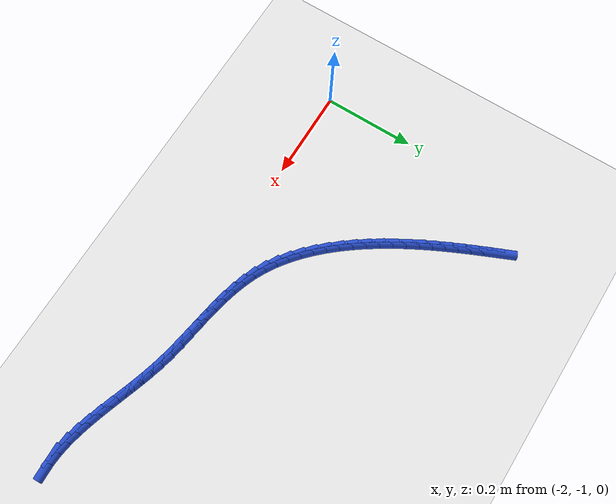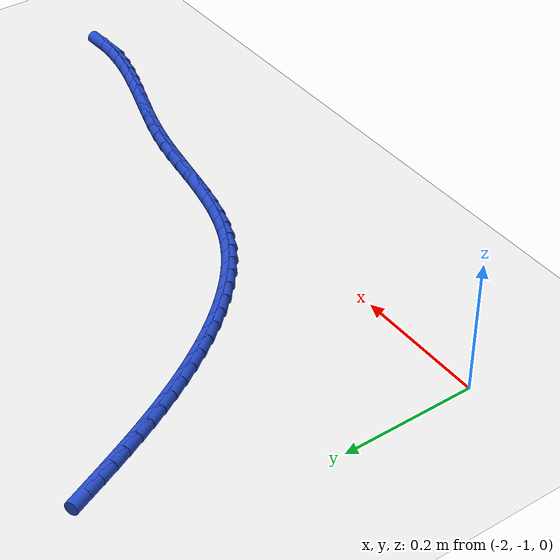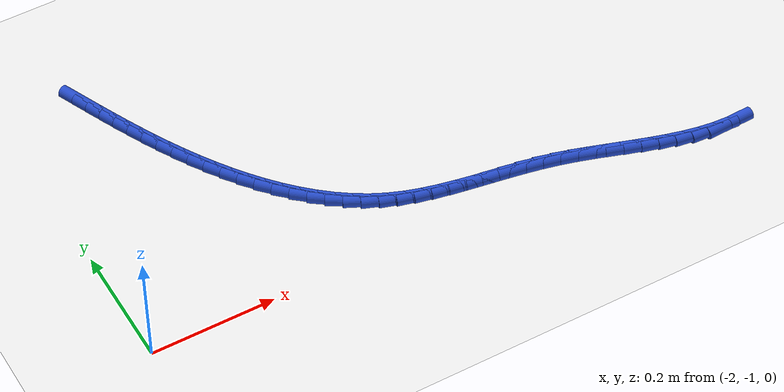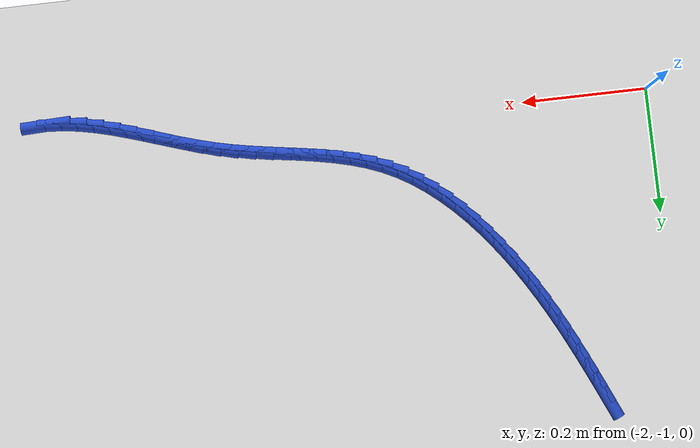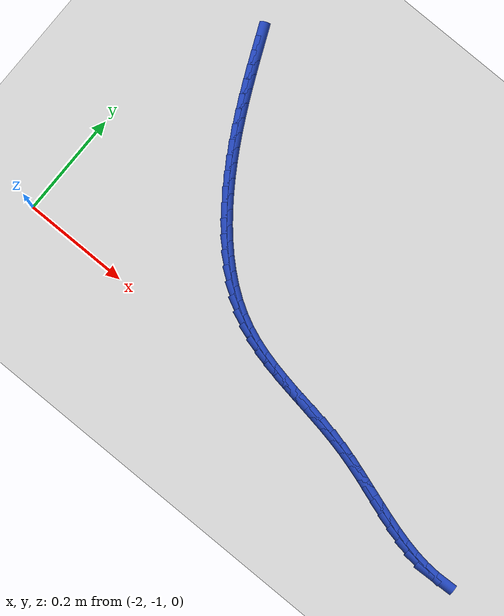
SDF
<sdf version="1.6">
 <world name="default">
  <model name="ground_plane">
   <static>1</static>
   <link name="link">
    <collision name="collision">
     <geometry><plane><normal>0 0 1</normal><size>100 100</size></plane></geometry>
     <surface><friction><ode><mu>100</mu><mu2>50</mu2></ode></friction></surface>
    </collision>
    <visual name="visual">
     <cast_shadows>0</cast_shadows>
     <geometry><plane><normal>0 0 1</normal><size>100 100</size></plane></geometry>
     <material>
      <script><uri>file://media/materials/scripts/gazebo.material</uri><name>Gazebo/WhiteGlow</name></script>
     </material>
    </visual>
   </link>
  </model>
  <model name="line">
   <link name="link_141">
    <pose>-1.8770264630937121 -0.5190698641041543 0.01 0 1.57 -1.151069824280215</pose>
    <collision name="collision">
     <geometry><cylinder><radius>0.01</radius><length>0.08</length></cylinder></geometry>
    </collision>
    <visual name="visual">
     <material>
      <script><name>Gazebo/Blue</name><uri>file://media/materials/scripts/gazebo.material</uri></script>
     </material>
     <geometry><cylinder><radius>0.01</radius><length>0.08</length></cylinder></geometry>
    </visual>
   </link>
   <link name="link_142">
    <pose>-1.8661264754642812 -0.543495905219309 0.01 0 1.57 -1.1443389175139003</pose>
    <collision name="collision">
     <geometry><cylinder><radius>0.01</radius><length>0.08</length></cylinder></geometry>
    </collision>
    <visual name="visual">
     <material>
      <script><name>Gazebo/Blue</name><uri>file://media/materials/scripts/gazebo.material</uri></script>
     </material>
     <geometry><cylinder><radius>0.01</radius><length>0.08</length></cylinder></geometry>
    </visual>
   </link>
   <link name="link_143">
    <pose>-1.8550273458565236 -0.567925019133953 0.01 0 1.57 -1.1341656578159842</pose>
    <collision name="collision">
     <geometry><cylinder><radius>0.01</radius><length>0.08</length></cylinder></geometry>
    </collision>
    <visual name="visual">
     <material>
      <script><name>Gazebo/Blue</name><uri>file://media/materials/scripts/gazebo.material</uri></script>
     </material>
     <geometry><cylinder><radius>0.01</radius><length>0.08</length></cylinder></geometry>
    </visual>
   </link>
   <link name="link_144">
    <pose>-1.8436387939530885 -0.592328835454801 0.01 0 1.57 -1.1205998817750848</pose>
    <collision name="collision">
     <geometry><cylinder><radius>0.01</radius><length>0.08</length></cylinder></geometry>
    </collision>
    <visual name="visual">
     <material>
      <script><name>Gazebo/Blue</name><uri>file://media/materials/scripts/gazebo.material</uri></script>
     </material>
     <geometry><cylinder><radius>0.01</radius><length>0.08</length></cylinder></geometry>
    </visual>
   </link>
   <link name="link_145">
    <pose>-1.8318705054424638 -0.6166788302595444 0.01 0 1.57 -1.1037092549878917</pose>
    <collision name="collision">
     <geometry><cylinder><radius>0.01</radius><length>0.08</length></cylinder></geometry>
    </collision>
    <visual name="visual">
     <material>
      <script><name>Gazebo/Blue</name><uri>file://media/materials/scripts/gazebo.material</uri></script>
     </material>
     <geometry><cylinder><radius>0.01</radius><length>0.08</length></cylinder></geometry>
    </visual>
   </link>
   <link name="link_146">
    <pose>-1.8196321660131374 -0.6409464796258747 0.01 0 1.57 -1.083579593771418</pose>
    <collision name="collision">
     <geometry><cylinder><radius>0.01</radius><length>0.08</length></cylinder></geometry>
    </collision>
    <visual name="visual">
     <material>
      <script><name>Gazebo/Blue</name><uri>file://media/materials/scripts/gazebo.material</uri></script>
     </material>
     <geometry><cylinder><radius>0.01</radius><length>0.08</length></cylinder></geometry>
    </visual>
   </link>
   <link name="link_147">
    <pose>-1.8068334613535972 -0.6651032596314839 0.01 0 1.57 -1.060319173628666</pose>
    <collision name="collision">
     <geometry><cylinder><radius>0.01</radius><length>0.08</length></cylinder></geometry>
    </collision>
    <visual name="visual">
     <material>
      <script><name>Gazebo/Blue</name><uri>file://media/materials/scripts/gazebo.material</uri></script>
     </material>
     <geometry><cylinder><radius>0.01</radius><length>0.08</length></cylinder></geometry>
    </visual>
   </link>
   <link name="link_148">
    <pose>-1.793384077152332 -0.6891206463540623 0.01 0 1.57 -1.0340631519101797</pose>
    <collision name="collision">
     <geometry><cylinder><radius>0.01</radius><length>0.08</length></cylinder></geometry>
    </collision>
    <visual name="visual">
     <material>
      <script><name>Gazebo/Blue</name><uri>file://media/materials/scripts/gazebo.material</uri></script>
     </material>
     <geometry><cylinder><radius>0.01</radius><length>0.08</length></cylinder></geometry>
    </visual>
   </link>
   <link name="link_149">
    <pose>-1.7791936990978297 -0.7129701158713018 0.01 0 1.57 -1.004926401782073</pose>
    <collision name="collision">
     <geometry><cylinder><radius>0.01</radius><length>0.08</length></cylinder></geometry>
    </collision>
    <visual name="visual">
     <material>
      <script><name>Gazebo/Blue</name><uri>file://media/materials/scripts/gazebo.material</uri></script>
     </material>
     <geometry><cylinder><radius>0.01</radius><length>0.08</length></cylinder></geometry>
    </visual>
   </link>
   <link name="link_150">
    <pose>-1.764182779621248 -0.7366035149778437 0.01 0 1.57 -0.9726370142380498</pose>
    <collision name="collision">
     <geometry><cylinder><radius>0.01</radius><length>0.08</length></cylinder></geometry>
    </collision>
    <visual name="visual">
     <material>
      <script><name>Gazebo/Blue</name><uri>file://media/materials/scripts/gazebo.material</uri></script>
     </material>
     <geometry><cylinder><radius>0.01</radius><length>0.08</length></cylinder></geometry>
    </visual>
   </link>
   <link name="link_151">
    <pose>-1.7483280337033917 -0.7598701159436102 0.01 0 1.57 -0.9367497758504644</pose>
    <collision name="collision">
     <geometry><cylinder><radius>0.01</radius><length>0.08</length></cylinder></geometry>
    </collision>
    <visual name="visual">
     <material>
      <script><name>Gazebo/Blue</name><uri>file://media/materials/scripts/gazebo.material</uri></script>
     </material>
     <geometry><cylinder><radius>0.01</radius><length>0.08</length></cylinder></geometry>
    </visual>
   </link>
   <link name="link_152">
    <pose>-1.731624493352692 -0.782585796526274 0.01 0 1.57 -0.896810469573696</pose>
    <collision name="collision">
     <geometry><cylinder><radius>0.01</radius><length>0.08</length></cylinder></geometry>
    </collision>
    <visual name="visual">
     <material>
      <script><name>Gazebo/Blue</name><uri>file://media/materials/scripts/gazebo.material</uri></script>
     </material>
     <geometry><cylinder><radius>0.01</radius><length>0.08</length></cylinder></geometry>
    </visual>
   </link>
   <link name="link_153">
    <pose>-1.7140672005016275 -0.8045664163905833 0.01 0 1.57 -0.8523089739892437</pose>
    <collision name="collision">
     <geometry><cylinder><radius>0.01</radius><length>0.08</length></cylinder></geometry>
    </collision>
    <visual name="visual">
     <material>
      <script><name>Gazebo/Blue</name><uri>file://media/materials/scripts/gazebo.material</uri></script>
     </material>
     <geometry><cylinder><radius>0.01</radius><length>0.08</length></cylinder></geometry>
    </visual>
   </link>
   <link name="link_154">
    <pose>-1.6956511970826746 -0.8256278352012855 0.01 0 1.57 -0.8026860504436617</pose>
    <collision name="collision">
     <geometry><cylinder><radius>0.01</radius><length>0.08</length></cylinder></geometry>
    </collision>
    <visual name="visual">
     <material>
      <script><name>Gazebo/Blue</name><uri>file://media/materials/scripts/gazebo.material</uri></script>
     </material>
     <geometry><cylinder><radius>0.01</radius><length>0.08</length></cylinder></geometry>
    </visual>
   </link>
   <link name="link_155">
    <pose>-1.6763715250283093 -0.8455859126231287 0.01 0 1.57 -0.747349941329581</pose>
    <collision name="collision">
     <geometry><cylinder><radius>0.01</radius><length>0.08</length></cylinder></geometry>
    </collision>
    <visual name="visual">
     <material>
      <script><name>Gazebo/Blue</name><uri>file://media/materials/scripts/gazebo.material</uri></script>
     </material>
     <geometry><cylinder><radius>0.01</radius><length>0.08</length></cylinder></geometry>
    </visual>
   </link>
   <link name="link_156">
    <pose>-1.6562232262710106 -0.8642565083208594 0.01 0 1.57 -0.685708161021192</pose>
    <collision name="collision">
     <geometry><cylinder><radius>0.01</radius><length>0.08</length></cylinder></geometry>
    </collision>
    <visual name="visual">
     <material>
      <script><name>Gazebo/Blue</name><uri>file://media/materials/scripts/gazebo.material</uri></script>
     </material>
     <geometry><cylinder><radius>0.01</radius><length>0.08</length></cylinder></geometry>
    </visual>
   </link>
   <link name="link_157">
    <pose>-1.6352013427432541 -0.8814554819592261 0.01 0 1.57 -0.6172209434826548</pose>
    <collision name="collision">
     <geometry><cylinder><radius>0.01</radius><length>0.08</length></cylinder></geometry>
    </collision>
    <visual name="visual">
     <material>
      <script><name>Gazebo/Blue</name><uri>file://media/materials/scripts/gazebo.material</uri></script>
     </material>
     <geometry><cylinder><radius>0.01</radius><length>0.08</length></cylinder></geometry>
    </visual>
   </link>
   <link name="link_158">
    <pose>-1.6133009163775172 -0.8969986932029758 0.01 0 1.57 -0.5414822697942804</pose>
    <collision name="collision">
     <geometry><cylinder><radius>0.01</radius><length>0.08</length></cylinder></geometry>
    </collision>
    <visual name="visual">
     <material>
      <script><name>Gazebo/Blue</name><uri>file://media/materials/scripts/gazebo.material</uri></script>
     </material>
     <geometry><cylinder><radius>0.01</radius><length>0.08</length></cylinder></geometry>
    </visual>
   </link>
   <link name="link_159">
    <pose>-1.590516989106278 -0.9107020017168569 0.01 0 1.57 -0.45838418401954956</pose>
    <collision name="collision">
     <geometry><cylinder><radius>0.01</radius><length>0.08</length></cylinder></geometry>
    </collision>
    <visual name="visual">
     <material>
      <script><name>Gazebo/Blue</name><uri>file://media/materials/scripts/gazebo.material</uri></script>
     </material>
     <geometry><cylinder><radius>0.01</radius><length>0.08</length></cylinder></geometry>
    </visual>
   </link>
   <link name="link_160">
    <pose>-1.5668449216388494 -0.9223826976314903 0.01 0 1.57 -0.37455094639362313</pose>
    <collision name="collision">
     <geometry><cylinder><radius>0.01</radius><length>0.08</length></cylinder></geometry>
    </collision>
    <visual name="visual">
     <material>
      <script><name>Gazebo/Blue</name><uri>file://media/materials/scripts/gazebo.material</uri></script>
     </material>
     <geometry><cylinder><radius>0.01</radius><length>0.08</length></cylinder></geometry>
    </visual>
   </link>
   <link name="link_161">
    <pose>-1.5423172156669744 -0.9320247359715977 0.01 0 1.57 -0.30316568806857036</pose>
    <collision name="collision">
     <geometry><cylinder><radius>0.01</radius><length>0.08</length></cylinder></geometry>
    </collision>
    <visual name="visual">
     <material>
      <script><name>Gazebo/Blue</name><uri>file://media/materials/scripts/gazebo.material</uri></script>
     </material>
     <geometry><cylinder><radius>0.01</radius><length>0.08</length></cylinder></geometry>
    </visual>
   </link>
   <link name="link_162">
    <pose>-1.5170377490516065 -0.9399323622040417 0.01 0 1.57 -0.24621200616463482</pose>
    <collision name="collision">
     <geometry><cylinder><radius>0.01</radius><length>0.08</length></cylinder></geometry>
    </collision>
    <visual name="visual">
     <material>
      <script><name>Gazebo/Blue</name><uri>file://media/materials/scripts/gazebo.material</uri></script>
     </material>
     <geometry><cylinder><radius>0.01</radius><length>0.08</length></cylinder></geometry>
    </visual>
   </link>
   <link name="link_163">
    <pose>-1.4911184956299535 -0.9464461513415546 0.01 0 1.57 -0.20360894841427762</pose>
    <collision name="collision">
     <geometry><cylinder><radius>0.01</radius><length>0.08</length></cylinder></geometry>
    </collision>
    <visual name="visual">
     <material>
      <script><name>Gazebo/Blue</name><uri>file://media/materials/scripts/gazebo.material</uri></script>
     </material>
     <geometry><cylinder><radius>0.01</radius><length>0.08</length></cylinder></geometry>
    </visual>
   </link>
   <link name="link_164">
    <pose>-1.4646714292392224 -0.9519066783968702 0.01 0 1.57 -0.17493671328486127</pose>
    <collision name="collision">
     <geometry><cylinder><radius>0.01</radius><length>0.08</length></cylinder></geometry>
    </collision>
    <visual name="visual">
     <material>
      <script><name>Gazebo/Blue</name><uri>file://media/materials/scripts/gazebo.material</uri></script>
     </material>
     <geometry><cylinder><radius>0.01</radius><length>0.08</length></cylinder></geometry>
    </visual>
   </link>
   <link name="link_165">
    <pose>-1.4378085237166198 -0.9566545183827213 0.01 0 1.57 -0.15969752383344182</pose>
    <collision name="collision">
     <geometry><cylinder><radius>0.01</radius><length>0.08</length></cylinder></geometry>
    </collision>
    <visual name="visual">
     <material>
      <script><name>Gazebo/Blue</name><uri>file://media/materials/scripts/gazebo.material</uri></script>
     </material>
     <geometry><cylinder><radius>0.01</radius><length>0.08</length></cylinder></geometry>
    </visual>
   </link>
   <link name="link_166">
    <pose>-1.4106417528993531 -0.9610302463118416 0.01 0 1.57 -0.15747199493427824</pose>
    <collision name="collision">
     <geometry><cylinder><radius>0.01</radius><length>0.08</length></cylinder></geometry>
    </collision>
    <visual name="visual">
     <material>
      <script><name>Gazebo/Blue</name><uri>file://media/materials/scripts/gazebo.material</uri></script>
     </material>
     <geometry><cylinder><radius>0.01</radius><length>0.08</length></cylinder></geometry>
    </visual>
   </link>
   <link name="link_167">
    <pose>-1.3832830906246292 -0.9653744371969637 0.01 0 1.57 -0.16798881543100072</pose>
    <collision name="collision">
     <geometry><cylinder><radius>0.01</radius><length>0.08</length></cylinder></geometry>
    </collision>
    <visual name="visual">
     <material>
      <script><name>Gazebo/Blue</name><uri>file://media/materials/scripts/gazebo.material</uri></script>
     </material>
     <geometry><cylinder><radius>0.01</radius><length>0.08</length></cylinder></geometry>
    </visual>
   </link>
   <link name="link_168">
    <pose>-1.355844510729655 -0.9700276660508214 0.01 0 1.57 -0.19112654712128216</pose>
    <collision name="collision">
     <geometry><cylinder><radius>0.01</radius><length>0.08</length></cylinder></geometry>
    </collision>
    <visual name="visual">
     <material>
      <script><name>Gazebo/Blue</name><uri>file://media/materials/scripts/gazebo.material</uri></script>
     </material>
     <geometry><cylinder><radius>0.01</radius><length>0.08</length></cylinder></geometry>
    </visual>
   </link>
   <link name="link_169">
    <pose>-1.3284379870516376 -0.975330507886147 0.01 0 1.57 -0.22683137640016948</pose>
    <collision name="collision">
     <geometry><cylinder><radius>0.01</radius><length>0.08</length></cylinder></geometry>
    </collision>
    <visual name="visual">
     <material>
      <script><name>Gazebo/Blue</name><uri>file://media/materials/scripts/gazebo.material</uri></script>
     </material>
     <geometry><cylinder><radius>0.01</radius><length>0.08</length></cylinder></geometry>
    </visual>
   </link>
   <link name="link_170">
    <pose>-1.30117535636491 -0.9816228182402491 0.01 0 1.57 -0.26807275938314207</pose>
    <collision name="collision">
     <geometry><cylinder><radius>0.01</radius><length>0.08</length></cylinder></geometry>
    </collision>
    <visual name="visual">
     <material>
      <script><name>Gazebo/Blue</name><uri>file://media/materials/scripts/gazebo.material</uri></script>
     </material>
     <geometry><cylinder><radius>0.01</radius><length>0.08</length></cylinder></geometry>
    </visual>
   </link>
   <link name="link_171">
    <pose>-1.2741316590201082 -0.9890512995233929 0.01 0 1.57 -0.29854238336060357</pose>
    <collision name="collision">
     <geometry><cylinder><radius>0.01</radius><length>0.08</length></cylinder></geometry>
    </collision>
    <visual name="visual">
     <material>
      <script><name>Gazebo/Blue</name><uri>file://media/materials/scripts/gazebo.material</uri></script>
     </material>
     <geometry><cylinder><radius>0.01</radius><length>0.08</length></cylinder></geometry>
    </visual>
   </link>
   <link name="link_172">
    <pose>-1.2472956657825935 -0.9973098046977548 0.01 0 1.57 -0.31612124686689613</pose>
    <collision name="collision">
     <geometry><cylinder><radius>0.01</radius><length>0.08</length></cylinder></geometry>
    </collision>
    <visual name="visual">
     <material>
      <script><name>Gazebo/Blue</name><uri>file://media/materials/scripts/gazebo.material</uri></script>
     </material>
     <geometry><cylinder><radius>0.01</radius><length>0.08</length></cylinder></geometry>
    </visual>
   </link>
   <link name="link_173">
    <pose>-1.2206437993708983 -1.0060273689084955 0.01 0 1.57 -0.32090843837717725</pose>
    <collision name="collision">
     <geometry><cylinder><radius>0.01</radius><length>0.08</length></cylinder></geometry>
    </collision>
    <visual name="visual">
     <material>
      <script><name>Gazebo/Blue</name><uri>file://media/materials/scripts/gazebo.material</uri></script>
     </material>
     <geometry><cylinder><radius>0.01</radius><length>0.08</length></cylinder></geometry>
    </visual>
   </link>
   <link name="link_174">
    <pose>-1.1941524825035548 -1.0148330273007768 0.01 0 1.57 -0.312776951860831</pose>
    <collision name="collision">
     <geometry><cylinder><radius>0.01</radius><length>0.08</length></cylinder></geometry>
    </collision>
    <visual name="visual">
     <material>
      <script><name>Gazebo/Blue</name><uri>file://media/materials/scripts/gazebo.material</uri></script>
     </material>
     <geometry><cylinder><radius>0.01</radius><length>0.08</length></cylinder></geometry>
    </visual>
   </link>
   <link name="link_175">
    <pose>-1.1677981378990956 -1.0233558150197595 0.01 0 1.57 -0.2913402733062148</pose>
    <collision name="collision">
     <geometry><cylinder><radius>0.01</radius><length>0.08</length></cylinder></geometry>
    </collision>
    <visual name="visual">
     <material>
      <script><name>Gazebo/Blue</name><uri>file://media/materials/scripts/gazebo.material</uri></script>
     </material>
     <geometry><cylinder><radius>0.01</radius><length>0.08</length></cylinder></geometry>
    </visual>
   </link>
   <link name="link_176">
    <pose>-1.1415571882760513 -1.0312247672106036 0.01 0 1.57 -0.255974091040833</pose>
    <collision name="collision">
     <geometry><cylinder><radius>0.01</radius><length>0.08</length></cylinder></geometry>
    </collision>
    <visual name="visual">
     <material>
      <script><name>Gazebo/Blue</name><uri>file://media/materials/scripts/gazebo.material</uri></script>
     </material>
     <geometry><cylinder><radius>0.01</radius><length>0.08</length></cylinder></geometry>
    </visual>
   </link>
   <link name="link_177">
    <pose>-1.1154060563529549 -1.0380689190184713 0.01 0 1.57 -0.20591097282049178</pose>
    <collision name="collision">
     <geometry><cylinder><radius>0.01</radius><length>0.08</length></cylinder></geometry>
    </collision>
    <visual name="visual">
     <material>
      <script><name>Gazebo/Blue</name><uri>file://media/materials/scripts/gazebo.material</uri></script>
     </material>
     <geometry><cylinder><radius>0.01</radius><length>0.08</length></cylinder></geometry>
    </visual>
   </link>
   <link name="link_178">
    <pose>-1.0893211648483387 -1.0435173055885225 0.01 0 1.57 -0.14044186141548703</pose>
    <collision name="collision">
     <geometry><cylinder><radius>0.01</radius><length>0.08</length></cylinder></geometry>
    </collision>
    <visual name="visual">
     <material>
      <script><name>Gazebo/Blue</name><uri>file://media/materials/scripts/gazebo.material</uri></script>
     </material>
     <geometry><cylinder><radius>0.01</radius><length>0.08</length></cylinder></geometry>
    </visual>
   </link>
   <link name="link_179">
    <pose>-1.0632789364807351 -1.047198962065919 0.01 0 1.57 -0.059260856725415666</pose>
    <collision name="collision">
     <geometry><cylinder><radius>0.01</radius><length>0.08</length></cylinder></geometry>
    </collision>
    <visual name="visual">
     <material>
      <script><name>Gazebo/Blue</name><uri>file://media/materials/scripts/gazebo.material</uri></script>
     </material>
     <geometry><cylinder><radius>0.01</radius><length>0.08</length></cylinder></geometry>
    </visual>
   </link>
   <link name="link_180">
    <pose>-1.0372557939686757 -1.048742923595821 0.01 0 1.57 0.035957652001330845</pose>
    <collision name="collision">
     <geometry><cylinder><radius>0.01</radius><length>0.08</length></cylinder></geometry>
    </collision>
    <visual name="visual">
     <material>
      <script><name>Gazebo/Blue</name><uri>file://media/materials/scripts/gazebo.material</uri></script>
     </material>
     <geometry><cylinder><radius>0.01</radius><length>0.08</length></cylinder></geometry>
    </visual>
   </link>
  </model>
 </world>
</sdf>
